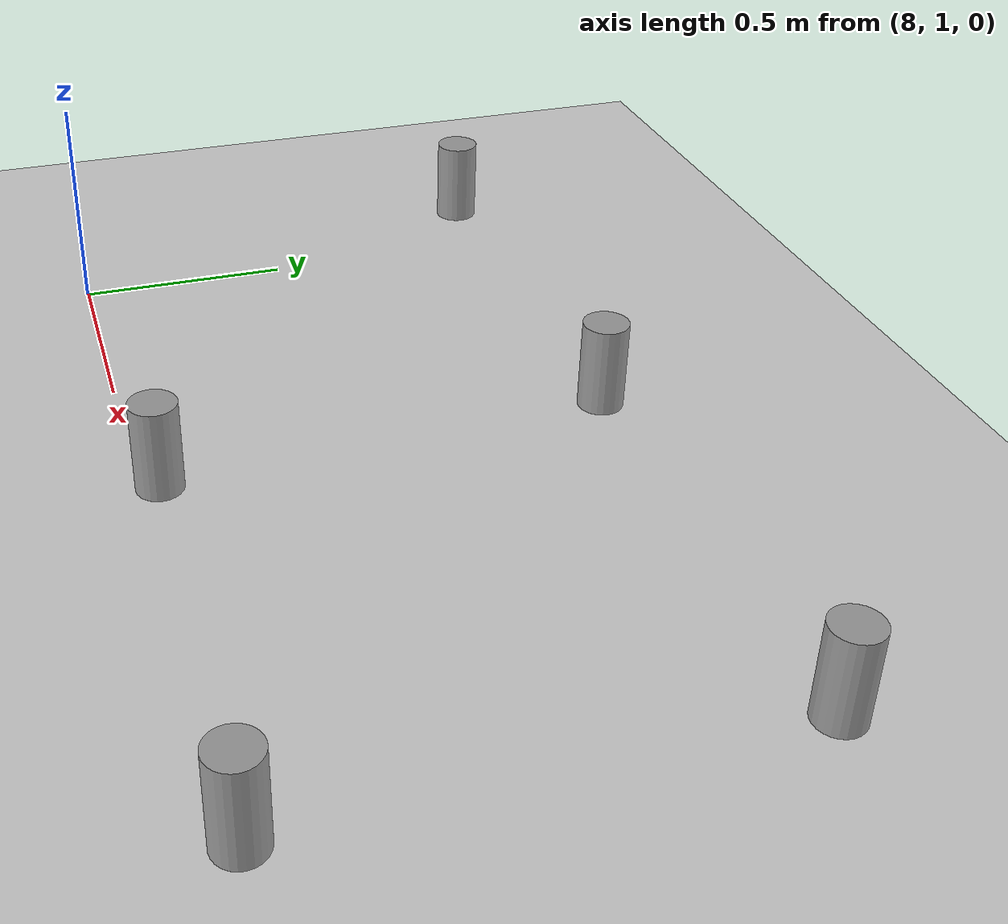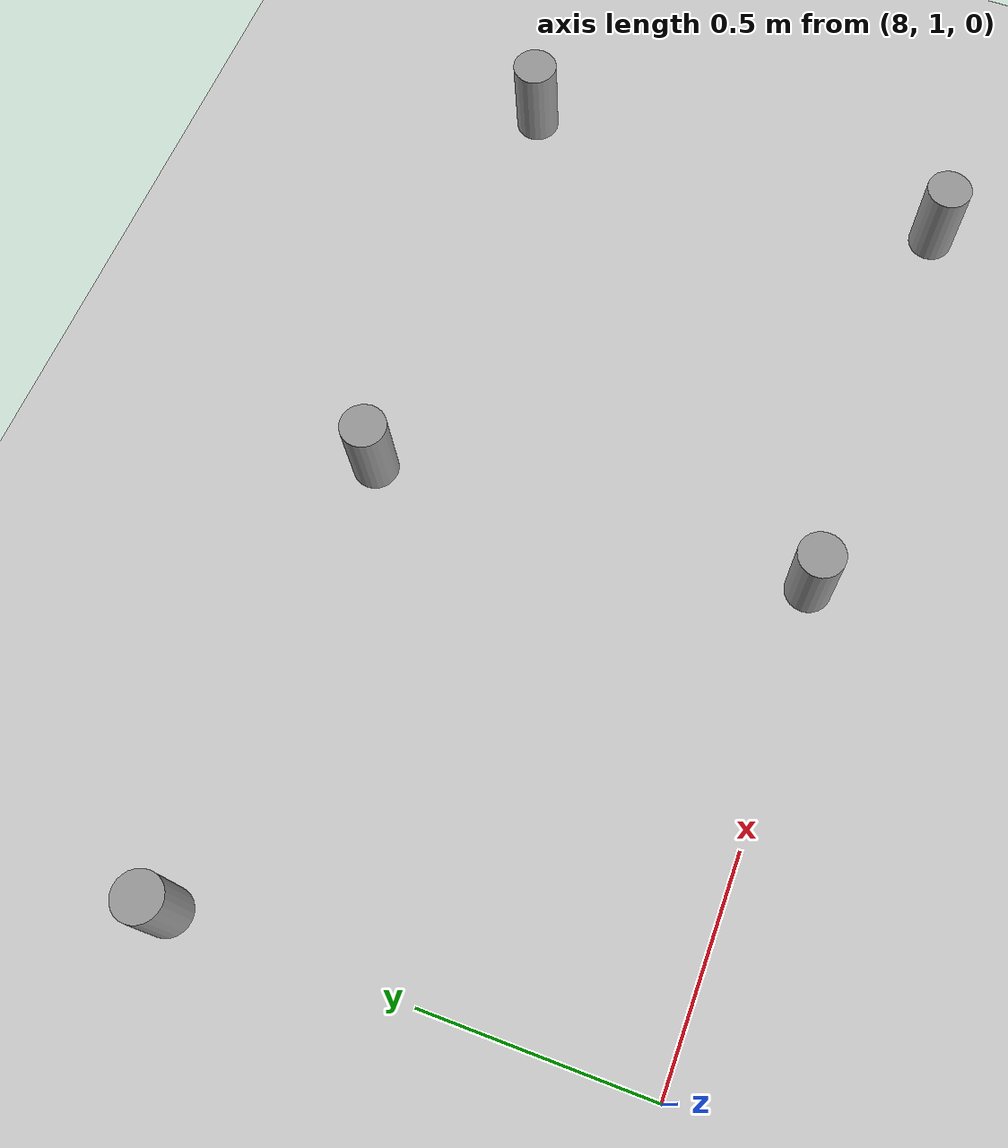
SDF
<sdf version="1.6">
 <world name="default">
  <model name="ground_plane">
   <static>1</static>
   <link name="link">
    <collision name="collision">
     <geometry><plane><normal>0 0 1</normal><size>100 100</size></plane></geometry>
     <surface><friction><ode><mu>100</mu><mu2>50</mu2></ode></friction></surface>
    </collision>
    <visual name="visual">
     <cast_shadows>0</cast_shadows>
     <geometry><plane><normal>0 0 1</normal><size>100 100</size></plane></geometry>
     <material>
      <script><uri>file://media/materials/scripts/gazebo.material</uri><name>Gazebo/Grey</name></script>
     </material>
    </visual>
   </link>
  </model>
  <model name="agent9">
   <link name="link_0">
    <inertial>
     <mass>1</mass>
     <inertia><ixx>0</ixx><ixy>0</ixy><ixz>0</ixz><iyy>0</iyy><iyz>0</iyz><izz>0</izz></inertia>
    </inertial>
    <visual name="visual">
     <geometry><cylinder><radius>0.05</radius><length>0.2</length></cylinder></geometry>
     <material>
      <lighting>1</lighting>
      <script><uri>file://media/materials/scripts/gazebo.material</uri><name>Gazebo/Grey</name></script>
     </material>
    </visual>
    <collision name="collision">
     <geometry><cylinder><radius>0.05</radius><length>0.2</length></cylinder></geometry>
     <surface>
      <friction>
       <ode><mu>0</mu><mu2>1</mu2><fdir1>0 0 0</fdir1><slip1>0</slip1><slip2>0</slip2></ode>
       <torsional>
        <coefficient>1</coefficient>
        <patch_radius>0</patch_radius>
        <surface_radius>0</surface_radius>
        <use_patch_radius>1</use_patch_radius>
        <ode><slip>0</slip></ode>
       </torsional>
      </friction>
      <bounce><restitution_coefficient>0</restitution_coefficient><threshold>1e+06</threshold></bounce>
      <contact>
       <collide_without_contact>0</collide_without_contact>
       <collide_without_contact_bitmask>1</collide_without_contact_bitmask>
       <collide_bitmask>1</collide_bitmask>
       <ode>
        <soft_cfm>0</soft_cfm>
        <soft_erp>0.2</soft_erp>
        <kp>1e+13</kp>
        <kd>1</kd>
        <max_vel>0.01</max_vel>
        <min_depth>0</min_depth>
       </ode>
       <bullet>
        <split_impulse>1</split_impulse>
        <split_impulse_penetration_threshold>-0.01</split_impulse_penetration_threshold>
        <soft_cfm>0</soft_cfm>
        <soft_erp>0.2</soft_erp>
        <kp>1e+13</kp>
        <kd>1</kd>
       </bullet>
      </contact>
     </surface>
    </collision>
   </link>
   <static>0</static>
   <plugin name="multi_obs" filename="libmulti_obs.so"/>
   <pose>9.04431 1.03292 0.19999 0 -0 0</pose>
  </model>
  <model name="agent10">
   <link name="link_0">
    <inertial>
     <mass>1</mass>
     <inertia><ixx>0</ixx><ixy>0</ixy><ixz>0</ixz><iyy>0</iyy><iyz>0</iyz><izz>0</izz></inertia>
    </inertial>
    <visual name="visual">
     <geometry><cylinder><radius>0.05</radius><length>0.2</length></cylinder></geometry>
     <material>
      <lighting>1</lighting>
      <script><uri>file://media/materials/scripts/gazebo.material</uri><name>Gazebo/Grey</name></script>
     </material>
    </visual>
    <collision name="collision">
     <geometry><cylinder><radius>0.05</radius><length>0.2</length></cylinder></geometry>
     <surface>
      <friction>
       <ode><mu>0</mu><mu2>1</mu2><fdir1>0 0 0</fdir1><slip1>0</slip1><slip2>0</slip2></ode>
       <torsional>
        <coefficient>1</coefficient>
        <patch_radius>0</patch_radius>
        <surface_radius>0</surface_radius>
        <use_patch_radius>1</use_patch_radius>
        <ode><slip>0</slip></ode>
       </torsional>
      </friction>
      <bounce><restitution_coefficient>0</restitution_coefficient><threshold>1e+06</threshold></bounce>
      <contact>
       <collide_without_contact>0</collide_without_contact>
       <collide_without_contact_bitmask>1</collide_without_contact_bitmask>
       <collide_bitmask>1</collide_bitmask>
       <ode>
        <soft_cfm>0</soft_cfm>
        <soft_erp>0.2</soft_erp>
        <kp>1e+13</kp>
        <kd>1</kd>
        <max_vel>0.01</max_vel>
        <min_depth>0</min_depth>
       </ode>
       <bullet>
        <split_impulse>1</split_impulse>
        <split_impulse_penetration_threshold>-0.01</split_impulse_penetration_threshold>
        <soft_cfm>0</soft_cfm>
        <soft_erp>0.2</soft_erp>
        <kp>1e+13</kp>
        <kd>1</kd>
       </bullet>
      </contact>
     </surface>
    </collision>
   </link>
   <static>0</static>
   <plugin name="multi_obs" filename="libmulti_obs.so"/>
   <pose>9.98695 1.00604 0.19999 0 -0 0</pose>
  </model>
  <model name="agent18">
   <link name="link_0">
    <inertial>
     <mass>1</mass>
     <inertia><ixx>0</ixx><ixy>0</ixy><ixz>0</ixz><iyy>0</iyy><iyz>0</iyz><izz>0</izz></inertia>
    </inertial>
    <visual name="visual">
     <geometry><cylinder><radius>0.05</radius><length>0.2</length></cylinder></geometry>
     <material>
      <lighting>1</lighting>
      <script><uri>file://media/materials/scripts/gazebo.material</uri><name>Gazebo/Grey</name></script>
     </material>
    </visual>
    <collision name="collision">
     <geometry><cylinder><radius>0.05</radius><length>0.2</length></cylinder></geometry>
     <surface>
      <friction>
       <ode><mu>0</mu><mu2>1</mu2><fdir1>0 0 0</fdir1><slip1>0</slip1><slip2>0</slip2></ode>
       <torsional>
        <coefficient>1</coefficient>
        <patch_radius>0</patch_radius>
        <surface_radius>0</surface_radius>
        <use_patch_radius>1</use_patch_radius>
        <ode><slip>0</slip></ode>
       </torsional>
      </friction>
      <bounce><restitution_coefficient>0</restitution_coefficient><threshold>1e+06</threshold></bounce>
      <contact>
       <collide_without_contact>0</collide_without_contact>
       <collide_without_contact_bitmask>1</collide_without_contact_bitmask>
       <collide_bitmask>1</collide_bitmask>
       <ode>
        <soft_cfm>0</soft_cfm>
        <soft_erp>0.2</soft_erp>
        <kp>1e+13</kp>
        <kd>1</kd>
        <max_vel>0.01</max_vel>
        <min_depth>0</min_depth>
       </ode>
       <bullet>
        <split_impulse>1</split_impulse>
        <split_impulse_penetration_threshold>-0.01</split_impulse_penetration_threshold>
        <soft_cfm>0</soft_cfm>
        <soft_erp>0.2</soft_erp>
        <kp>1e+13</kp>
        <kd>1</kd>
       </bullet>
      </contact>
     </surface>
    </collision>
   </link>
   <static>0</static>
   <plugin name="multi_obs" filename="libmulti_obs.so"/>
   <pose>8 2 0.19999 0 -0 0</pose>
  </model>
  <model name="agent19">
   <link name="link_0">
    <inertial>
     <mass>1</mass>
     <inertia><ixx>0</ixx><ixy>0</ixy><ixz>0</ixz><iyy>0</iyy><iyz>0</iyz><izz>0</izz></inertia>
    </inertial>
    <visual name="visual">
     <geometry><cylinder><radius>0.05</radius><length>0.2</length></cylinder></geometry>
     <material>
      <lighting>1</lighting>
      <script><uri>file://media/materials/scripts/gazebo.material</uri><name>Gazebo/Grey</name></script>
     </material>
    </visual>
    <collision name="collision">
     <geometry><cylinder><radius>0.05</radius><length>0.2</length></cylinder></geometry>
     <surface>
      <friction>
       <ode><mu>0</mu><mu2>1</mu2><fdir1>0 0 0</fdir1><slip1>0</slip1><slip2>0</slip2></ode>
       <torsional>
        <coefficient>1</coefficient>
        <patch_radius>0</patch_radius>
        <surface_radius>0</surface_radius>
        <use_patch_radius>1</use_patch_radius>
        <ode><slip>0</slip></ode>
       </torsional>
      </friction>
      <bounce><restitution_coefficient>0</restitution_coefficient><threshold>1e+06</threshold></bounce>
      <contact>
       <collide_without_contact>0</collide_without_contact>
       <collide_without_contact_bitmask>1</collide_without_contact_bitmask>
       <collide_bitmask>1</collide_bitmask>
       <ode>
        <soft_cfm>0</soft_cfm>
        <soft_erp>0.2</soft_erp>
        <kp>1e+13</kp>
        <kd>1</kd>
        <max_vel>0.01</max_vel>
        <min_depth>0</min_depth>
       </ode>
       <bullet>
        <split_impulse>1</split_impulse>
        <split_impulse_penetration_threshold>-0.01</split_impulse_penetration_threshold>
        <soft_cfm>0</soft_cfm>
        <soft_erp>0.2</soft_erp>
        <kp>1e+13</kp>
        <kd>1</kd>
       </bullet>
      </contact>
     </surface>
    </collision>
   </link>
   <static>0</static>
   <plugin name="multi_obs" filename="libmulti_obs.so"/>
   <pose>9 2 0.19999 0 -0 0</pose>
  </model>
  <model name="agent20">
   <link name="link_0">
    <inertial>
     <mass>1</mass>
     <inertia><ixx>0</ixx><ixy>0</ixy><ixz>0</ixz><iyy>0</iyy><iyz>0</iyz><izz>0</izz></inertia>
    </inertial>
    <visual name="visual">
     <geometry><cylinder><radius>0.05</radius><length>0.2</length></cylinder></geometry>
     <material>
      <lighting>1</lighting>
      <script><uri>file://media/materials/scripts/gazebo.material</uri><name>Gazebo/Grey</name></script>
     </material>
    </visual>
    <collision name="collision">
     <geometry><cylinder><radius>0.05</radius><length>0.2</length></cylinder></geometry>
     <surface>
      <friction>
       <ode><mu>0</mu><mu2>1</mu2><fdir1>0 0 0</fdir1><slip1>0</slip1><slip2>0</slip2></ode>
       <torsional>
        <coefficient>1</coefficient>
        <patch_radius>0</patch_radius>
        <surface_radius>0</surface_radius>
        <use_patch_radius>1</use_patch_radius>
        <ode><slip>0</slip></ode>
       </torsional>
      </friction>
      <bounce><restitution_coefficient>0</restitution_coefficient><threshold>1e+06</threshold></bounce>
      <contact>
       <collide_without_contact>0</collide_without_contact>
       <collide_without_contact_bitmask>1</collide_without_contact_bitmask>
       <collide_bitmask>1</collide_bitmask>
       <ode>
        <soft_cfm>0</soft_cfm>
        <soft_erp>0.2</soft_erp>
        <kp>1e+13</kp>
        <kd>1</kd>
        <max_vel>0.01</max_vel>
        <min_depth>0</min_depth>
       </ode>
       <bullet>
        <split_impulse>1</split_impulse>
        <split_impulse_penetration_threshold>-0.01</split_impulse_penetration_threshold>
        <soft_cfm>0</soft_cfm>
        <soft_erp>0.2</soft_erp>
        <kp>1e+13</kp>
        <kd>1</kd>
       </bullet>
      </contact>
     </surface>
    </collision>
   </link>
   <static>0</static>
   <plugin name="multi_obs" filename="libmulti_obs.so"/>
   <pose>10 2 0.19999 0 -0 0</pose>
  </model>
 </world>
</sdf>
